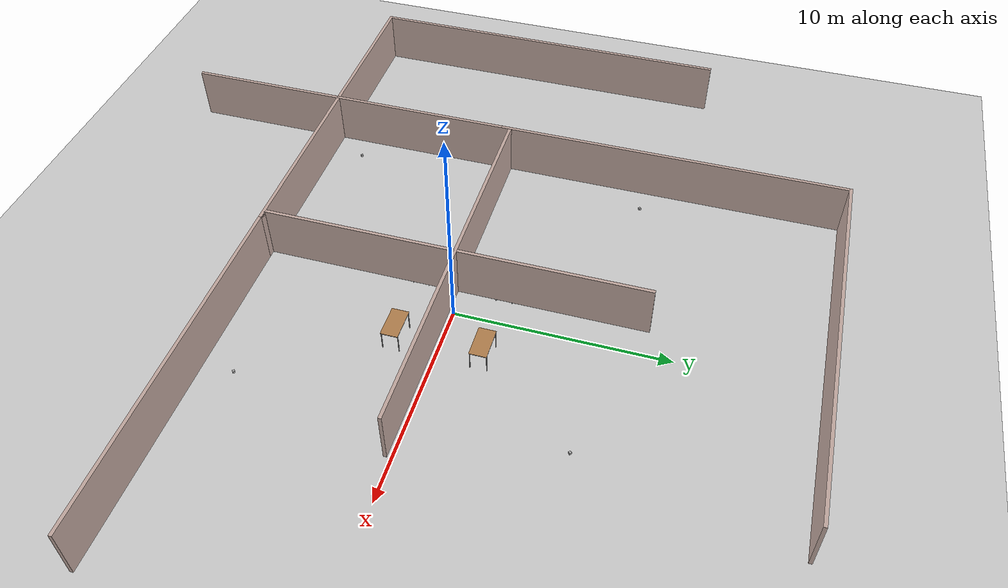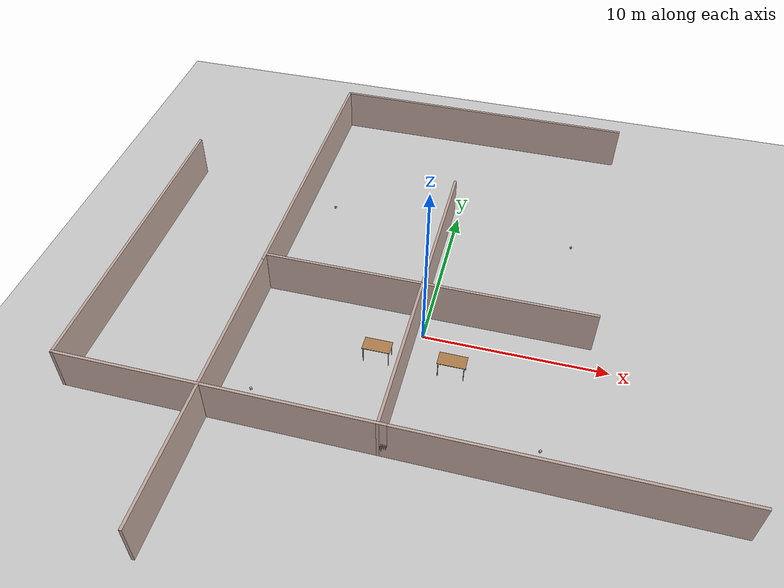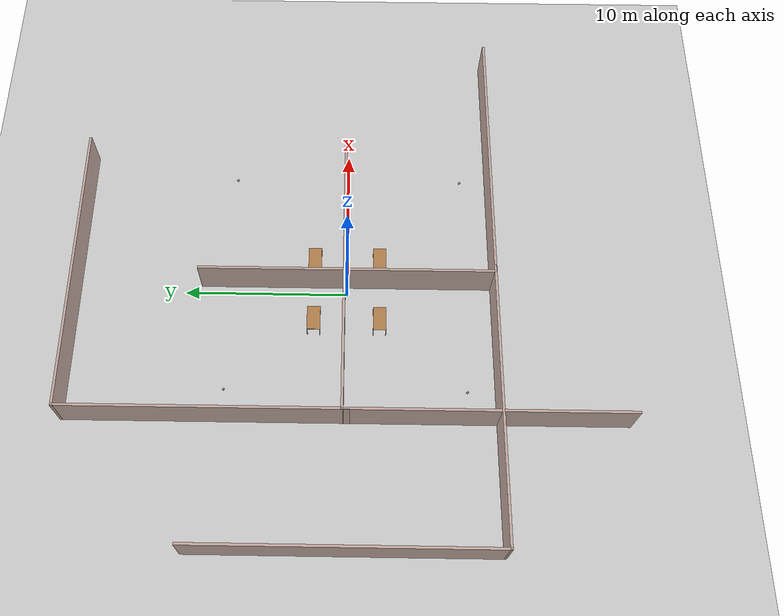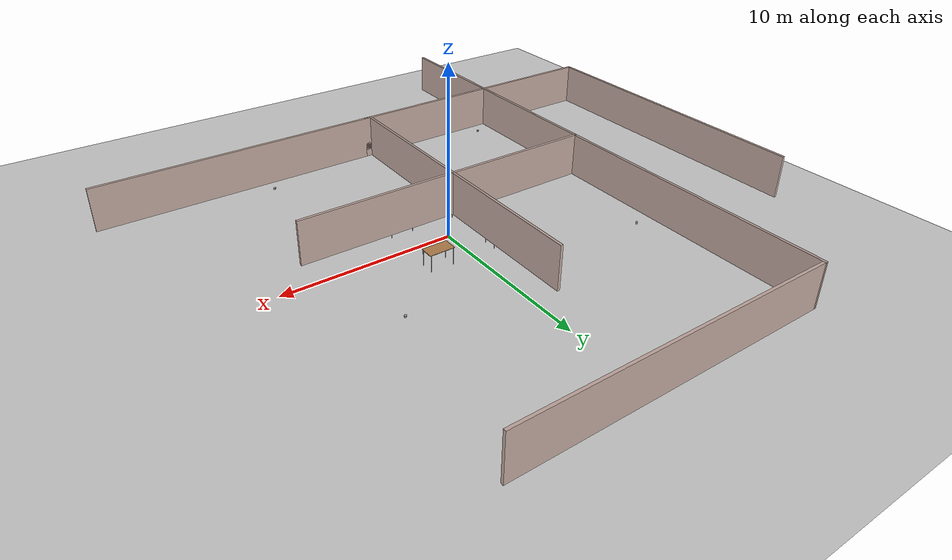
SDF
<sdf version="1.4">
 <world name="surveillance_world">
  <include><uri>model://sun</uri></include>
  <include><uri>model://ground_plane</uri></include>
  <include><uri>model://table</uri><name>table_1</name><pose>2 2 0 0 0 0</pose></include>
  <include><uri>model://table</uri><name>table_2</name><pose>-2 2 0 0 0 0</pose></include>
  <include><uri>model://table</uri><name>table_3</name><pose>2 -2 0 0 0 0</pose></include>
  <include><uri>model://table</uri><name>table_4</name><pose>-2 -2 0 0 0 0</pose></include>
  <include>
   <uri>model://wall</uri>
   <name>wall_north</name>
   <pose>0 8 1.5 0 0 0</pose>
   <size>16 0.2 3</size>
  </include>
  <include>
   <uri>model://wall</uri>
   <name>wall_south</name>
   <pose>0 -8 1.5 0 0 0</pose>
   <size>16 0.2 3</size>
  </include>
  <include>
   <uri>model://wall</uri>
   <name>wall_east</name>
   <pose>8 0 1.5 0 0 1.5708</pose>
   <size>16 0.2 3</size>
  </include>
  <include>
   <uri>model://wall</uri>
   <name>wall_west</name>
   <pose>-8 0 1.5 0 0 1.5708</pose>
   <size>16 0.2 3</size>
  </include>
  <include><uri>model://camera</uri><name>camera_1</name><pose>7 7 2 0 0 2.356</pose></include>
  <include><uri>model://camera</uri><name>camera_2</name><pose>-7 7 2 0 0 -2.356</pose></include>
  <include><uri>model://camera</uri><name>camera_3</name><pose>7 -7 2 0 0 -0.785</pose></include>
  <include><uri>model://camera</uri><name>camera_4</name><pose>-7 -7 2 0 0 0.785</pose></include>
  <physics type="ode">
   <max_step_size>0.001</max_step_size>
   <real_time_factor>1</real_time_factor>
   <real_time_update_rate>1000</real_time_update_rate>
   <gravity>0 0 -9.81</gravity>
  </physics>
 </world>
</sdf>

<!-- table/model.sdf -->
<sdf version="1.5">
  <model name="table">
    <static>true</static>
    <link name="link">
      <collision name="surface">
        <pose>0 0 1.0 0 0 0</pose>
        <geometry>
          <box>
            <size>1.5 0.8 0.03</size>
          </box>
        </geometry>
        <surface>
          <friction>
            <ode>
              <mu>0.6</mu>
              <mu2>0.6</mu2>
            </ode>
          </friction>
        </surface>
      </collision>
      <visual name="visual1">
        <pose>0 0 1.0 0 0 0</pose>
        <geometry>
          <box>
            <size>1.5 0.8 0.03</size>
          </box>
        </geometry>
        <material>
          <script>
            <uri>model://media/materials/scripts/gazebo.material</uri>
            <name>Gazebo/Wood</name>
          </script>
        </material>
      </visual>
      <collision name="front_left_leg">
        <pose>0.68 0.38 0.5 0 0 0</pose>
        <geometry>
          <cylinder>
            <radius>0.02</radius>
            <length>1.0</length>
          </cylinder>
        </geometry>
      </collision>
      <visual name="front_left_leg">
        <pose>0.68 0.38 0.5 0 0 0</pose>
        <geometry>
          <cylinder>
            <radius>0.02</radius>
            <length>1.0</length>
          </cylinder>
        </geometry>
        <material>
          <script>
            <uri>model://media/materials/scripts/gazebo.material</uri>
            <name>Gazebo/Grey</name>
          </script>
        </material>
      </visual>
      <collision name="front_right_leg">
        <pose>0.68 -0.38 0.5 0 0 0</pose>
        <geometry>
          <cylinder>
            <radius>0.02</radius>
            <length>1.0</length>
          </cylinder>
        </geometry>
      </collision>
      <visual name="front_right_leg">
        <pose>0.68 -0.38 0.5 0 0 0</pose>
        <geometry>
          <cylinder>
            <radius>0.02</radius>
            <length>1.0</length>
          </cylinder>
        </geometry>
        <material>
          <script>
            <uri>model://media/materials/scripts/gazebo.material</uri>
            <name>Gazebo/Grey</name>
          </script>
        </material>
      </visual>
      <collision name="back_right_leg">
        <pose>-0.68 -0.38 0.5 0 0 0</pose>
        <geometry>
          <cylinder>
            <radius>0.02</radius>
            <length>1.0</length>
          </cylinder>
        </geometry>
      </collision>
      <visual name="back_right_leg">
        <pose>-0.68 -0.38 0.5 0 0 0</pose>
        <geometry>
          <cylinder>
            <radius>0.02</radius>
            <length>1.0</length>
          </cylinder>
        </geometry>
        <material>
          <script>
            <uri>model://media/materials/scripts/gazebo.material</uri>
            <name>Gazebo/Grey</name>
          </script>
        </material>
      </visual>
      <collision name="back_left_leg">
        <pose>-0.68 0.38 0.5 0 0 0</pose>
        <geometry>
          <cylinder>
            <radius>0.02</radius>
            <length>1.0</length>
          </cylinder>
        </geometry>
      </collision>
      <visual name="back_left_leg">
        <pose>-0.68 0.38 0.5 0 0 0</pose>
        <geometry>
          <cylinder>
            <radius>0.02</radius>
            <length>1.0</length>
          </cylinder>
        </geometry>
        <material>
          <script>
            <uri>model://media/materials/scripts/gazebo.material</uri>
            <name>Gazebo/Grey</name>
          </script>
        </material>
      </visual>
    </link>
  </model>
</sdf>

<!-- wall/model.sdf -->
<sdf version='1.6'>
  <model name='wall'>
    <pose frame=''>-1.26581 1.80502 0 0 -0 0</pose>
    <link name='Wall_0'>
      <collision name='Wall_0_Collision'>
        <geometry>
          <box>
            <size>16.5 0.15 2.5</size>
          </box>
        </geometry>
        <pose frame=''>0 0 1.25 0 -0 0</pose>
      </collision>
      <visual name='Wall_0_Visual'>
        <pose frame=''>0 0 1.25 0 -0 0</pose>
        <geometry>
          <box>
            <size>16.5 0.15 2.5</size>
          </box>
        </geometry>
        <material>
          <script>
            <uri>file://media/materials/scripts/gazebo.material</uri>
            <name>Gazebo/Grey</name>
          </script>
          <ambient>0.760784 0.662745 0.627451 1</ambient>
        </material>
        <meta>
          <layer>0</layer>
        </meta>
      </visual>
      <pose frame=''>-8.71419 -1.8e-05 0 0 0 -1.5708</pose>
    </link>
    <link name='Wall_2'>
      <collision name='Wall_2_Collision'>
        <geometry>
          <box>
            <size>17.5784 0.15 2.5</size>
          </box>
        </geometry>
        <pose frame=''>0 0 1.25 0 -0 0</pose>
      </collision>
      <visual name='Wall_2_Visual'>
        <pose frame=''>0 0 1.25 0 -0 0</pose>
        <geometry>
          <box>
            <size>17.5784 0.15 2.5</size>
          </box>
        </geometry>
        <material>
          <script>
            <uri>file://media/materials/scripts/gazebo.material</uri>
            <name>Gazebo/Grey</name>
          </script>
          <ambient>0.760784 0.662745 0.627451 1</ambient>
        </material>
        <meta>
          <layer>0</layer>
        </meta>
      </visual>
      <pose frame=''>0 8.17066 0 0 0 -0.000496</pose>
    </link>
    <static>1</static>
  </model>
</sdf>

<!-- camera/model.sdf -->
<sdf version="1.5">
  <model name="camera">
    <pose>0 0 0.05 0 0 0</pose>
    <link name="link">
      <inertial>
        <mass>0.1</mass>
        <inertia>
          <ixx>0.000166667</ixx>
          <iyy>0.000166667</iyy>
          <izz>0.000166667</izz>
        </inertia>
      </inertial>
      <collision name="collision">
        <geometry>
          <box>
            <size>0.1 0.1 0.1</size>
          </box>
        </geometry>
      </collision>
      <visual name="visual">
        <geometry>
          <box>
            <size>0.1 0.1 0.1</size>
          </box>
        </geometry>
      </visual>
      <sensor name="camera" type="camera">
        <camera>
          <horizontal_fov>1.047</horizontal_fov>
          <image>
            <width>320</width>
            <height>240</height>
          </image>
          <clip>
            <near>0.1</near>
            <far>100</far>
          </clip>
        </camera>
        <always_on>1</always_on>
        <update_rate>30</update_rate>
        <visualize>true</visualize>
      </sensor>
    </link>
  </model>
</sdf>
